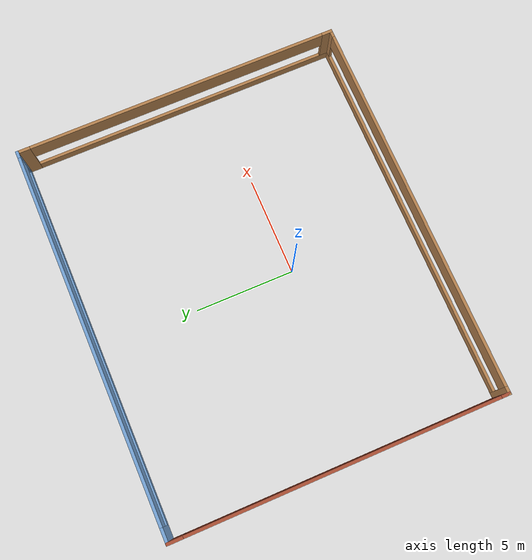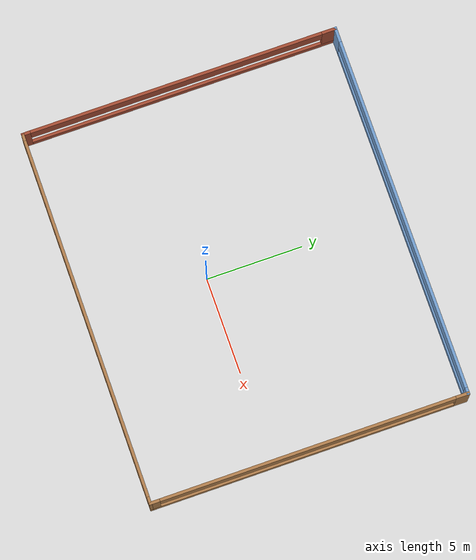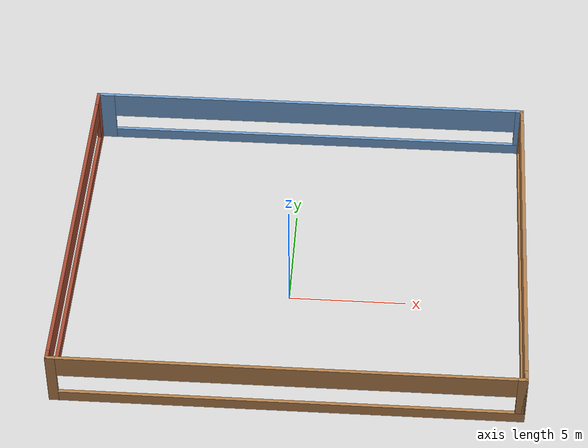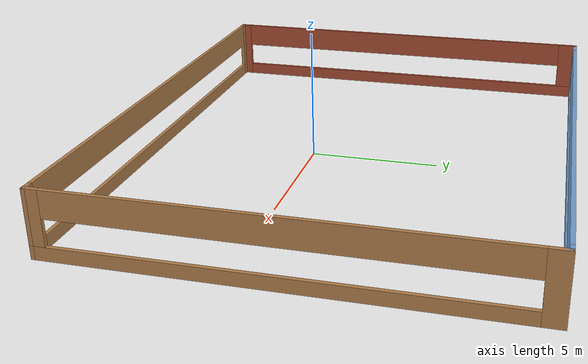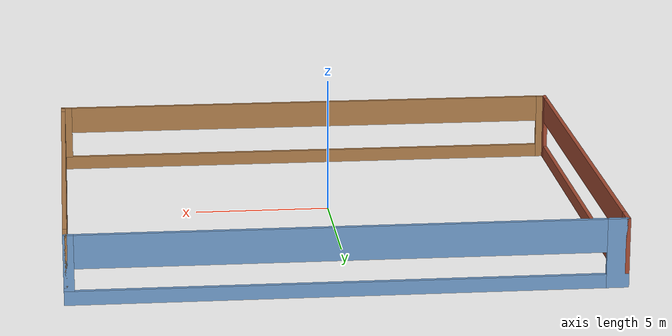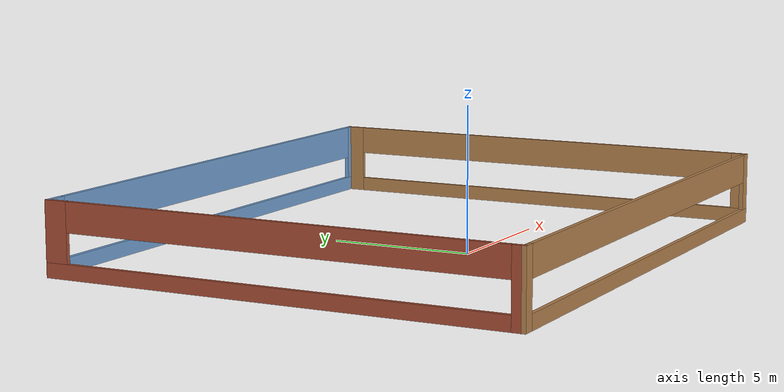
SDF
<?xml version='1.0'?>
<sdf version='1.6'>
  <model name='Building'>
    <pose frame=''>0.260608 1.85319 0 0 -0 0</pose>
    <link name='Wall_39'>
      <pose frame=''>-9.675 0 0 0 -0 1.5708</pose>
      <visual name='Wall_39_Visual_0'>
        <pose frame=''>-8.01982 0 1.25 0 -0 0</pose>
        <geometry>
          <box>
            <size>0.460353 0.15 2.5</size>
          </box>
        </geometry>
        <material>
          <script>
            <uri>file://media/materials/scripts/gazebo.material</uri>
            <name>Gazebo/Bricks</name>
          </script>
          <ambient>1 1 1 1</ambient>
        </material>
        <meta>
          <layer>0</layer>
        </meta>
      </visual>
      <collision name='Wall_39_Collision_0'>
        <geometry>
          <box>
            <size>0.460353 0.15 2.5</size>
          </box>
        </geometry>
        <pose frame=''>-8.01982 0 1.25 0 -0 0</pose>
      </collision>
      <visual name='Wall_39_Visual_1'>
        <pose frame=''>0.230176 0 0.25 0 -0 0</pose>
        <geometry>
          <box>
            <size>16.0396 0.15 0.5</size>
          </box>
        </geometry>
        <material>
          <script>
            <uri>file://media/materials/scripts/gazebo.material</uri>
            <name>Gazebo/Bricks</name>
          </script>
          <ambient>1 1 1 1</ambient>
        </material>
        <meta>
          <layer>0</layer>
        </meta>
      </visual>
      <collision name='Wall_39_Collision_1'>
        <geometry>
          <box>
            <size>16.0396 0.15 0.5</size>
          </box>
        </geometry>
        <pose frame=''>0.230176 0 0.25 0 -0 0</pose>
      </collision>
      <visual name='Wall_39_Visual_2'>
        <pose frame=''>7.85018 0 1.5 0 -0 0</pose>
        <geometry>
          <box>
            <size>0.799647 0.15 2</size>
          </box>
        </geometry>
        <material>
          <script>
            <uri>file://media/materials/scripts/gazebo.material</uri>
            <name>Gazebo/Bricks</name>
          </script>
          <ambient>1 1 1 1</ambient>
        </material>
        <meta>
          <layer>0</layer>
        </meta>
      </visual>
      <collision name='Wall_39_Collision_2'>
        <geometry>
          <box>
            <size>0.799647 0.15 2</size>
          </box>
        </geometry>
        <pose frame=''>7.85018 0 1.5 0 -0 0</pose>
      </collision>
      <visual name='Wall_39_Visual_3'>
        <pose frame=''>-0.169647 0 2 0 -0 0</pose>
        <geometry>
          <box>
            <size>15.24 0.15 1</size>
          </box>
        </geometry>
        <material>
          <script>
            <uri>file://media/materials/scripts/gazebo.material</uri>
            <name>Gazebo/Bricks</name>
          </script>
          <ambient>1 1 1 1</ambient>
        </material>
        <meta>
          <layer>0</layer>
        </meta>
      </visual>
      <collision name='Wall_39_Collision_3'>
        <geometry>
          <box>
            <size>15.24 0.15 1</size>
          </box>
        </geometry>
        <pose frame=''>-0.169647 0 2 0 -0 0</pose>
      </collision>
    </link>
    <link name='Wall_40'>
      <pose frame=''>-0 8.175 0 0 -0 0</pose>
      <visual name='Wall_40_Visual_0'>
        <pose frame=''>-9.34874 0 1.25 0 -0 0</pose>
        <geometry>
          <box>
            <size>0.802523 0.15 2.5</size>
          </box>
        </geometry>
        <material>
          <script>
            <uri>file://media/materials/scripts/gazebo.material</uri>
            <name>Gazebo/Grey</name>
          </script>
          <ambient>0.447059 0.623529 0.811765 1</ambient>
        </material>
        <meta>
          <layer>0</layer>
        </meta>
      </visual>
      <collision name='Wall_40_Collision_0'>
        <geometry>
          <box>
            <size>0.802523 0.15 2.5</size>
          </box>
        </geometry>
        <pose frame=''>-9.34874 0 1.25 0 -0 0</pose>
      </collision>
      <visual name='Wall_40_Visual_1'>
        <pose frame=''>0.401262 0 0.25 0 -0 0</pose>
        <geometry>
          <box>
            <size>18.6975 0.15 0.5</size>
          </box>
        </geometry>
        <material>
          <script>
            <uri>file://media/materials/scripts/gazebo.material</uri>
            <name>Gazebo/Grey</name>
          </script>
          <ambient>0.447059 0.623529 0.811765 1</ambient>
        </material>
        <meta>
          <layer>0</layer>
        </meta>
      </visual>
      <collision name='Wall_40_Collision_1'>
        <geometry>
          <box>
            <size>18.6975 0.15 0.5</size>
          </box>
        </geometry>
        <pose frame=''>0.401262 0 0.25 0 -0 0</pose>
      </collision>
      <visual name='Wall_40_Visual_2'>
        <pose frame=''>9.56603 0 1.5 0 -0 0</pose>
        <geometry>
          <box>
            <size>0.367946 0.15 2</size>
          </box>
        </geometry>
        <material>
          <script>
            <uri>file://media/materials/scripts/gazebo.material</uri>
            <name>Gazebo/Grey</name>
          </script>
          <ambient>0.447059 0.623529 0.811765 1</ambient>
        </material>
        <meta>
          <layer>0</layer>
        </meta>
      </visual>
      <collision name='Wall_40_Collision_2'>
        <geometry>
          <box>
            <size>0.367946 0.15 2</size>
          </box>
        </geometry>
        <pose frame=''>9.56603 0 1.5 0 -0 0</pose>
      </collision>
      <visual name='Wall_40_Visual_3'>
        <pose frame=''>0.217289 0 1.9 0 -0 0</pose>
        <geometry>
          <box>
            <size>18.3295 0.15 1.2</size>
          </box>
        </geometry>
        <material>
          <script>
            <uri>file://media/materials/scripts/gazebo.material</uri>
            <name>Gazebo/Grey</name>
          </script>
          <ambient>0.447059 0.623529 0.811765 1</ambient>
        </material>
        <meta>
          <layer>0</layer>
        </meta>
      </visual>
      <collision name='Wall_40_Collision_3'>
        <geometry>
          <box>
            <size>18.3295 0.15 1.2</size>
          </box>
        </geometry>
        <pose frame=''>0.217289 0 1.9 0 -0 0</pose>
      </collision>
    </link>
    <link name='Wall_42'>
      <pose frame=''>9.675 0 0 0 -0 -1.5708</pose>
      <visual name='Wall_42_Visual_0'>
        <pose frame=''>-7.89367 0 1.25 0 -0 0</pose>
        <geometry>
          <box>
            <size>0.712665 0.15 2.5</size>
          </box>
        </geometry>
        <material>
          <script>
            <uri>file://media/materials/scripts/gazebo.material</uri>
            <name>Gazebo/Wood</name>
          </script>
          <ambient>1 1 1 1</ambient>
        </material>
        <meta>
          <layer>0</layer>
        </meta>
      </visual>
      <collision name='Wall_42_Collision_0'>
        <geometry>
          <box>
            <size>0.712665 0.15 2.5</size>
          </box>
        </geometry>
        <pose frame=''>-7.89367 0 1.25 0 -0 0</pose>
      </collision>
      <visual name='Wall_42_Visual_1'>
        <pose frame=''>0.356333 0 0.25 0 -0 0</pose>
        <geometry>
          <box>
            <size>15.7873 0.15 0.5</size>
          </box>
        </geometry>
        <material>
          <script>
            <uri>file://media/materials/scripts/gazebo.material</uri>
            <name>Gazebo/Wood</name>
          </script>
          <ambient>1 1 1 1</ambient>
        </material>
        <meta>
          <layer>0</layer>
        </meta>
      </visual>
      <collision name='Wall_42_Collision_1'>
        <geometry>
          <box>
            <size>15.7873 0.15 0.5</size>
          </box>
        </geometry>
        <pose frame=''>0.356333 0 0.25 0 -0 0</pose>
      </collision>
      <visual name='Wall_42_Visual_2'>
        <pose frame=''>7.97133 0 1.5 0 -0 0</pose>
        <geometry>
          <box>
            <size>0.557335 0.15 2</size>
          </box>
        </geometry>
        <material>
          <script>
            <uri>file://media/materials/scripts/gazebo.material</uri>
            <name>Gazebo/Wood</name>
          </script>
          <ambient>1 1 1 1</ambient>
        </material>
        <meta>
          <layer>0</layer>
        </meta>
      </visual>
      <collision name='Wall_42_Collision_2'>
        <geometry>
          <box>
            <size>0.557335 0.15 2</size>
          </box>
        </geometry>
        <pose frame=''>7.97133 0 1.5 0 -0 0</pose>
      </collision>
      <visual name='Wall_42_Visual_3'>
        <pose frame=''>0.077665 0 2 0 -0 0</pose>
        <geometry>
          <box>
            <size>15.23 0.15 1</size>
          </box>
        </geometry>
        <material>
          <script>
            <uri>file://media/materials/scripts/gazebo.material</uri>
            <name>Gazebo/Wood</name>
          </script>
          <ambient>1 1 1 1</ambient>
        </material>
        <meta>
          <layer>0</layer>
        </meta>
      </visual>
      <collision name='Wall_42_Collision_3'>
        <geometry>
          <box>
            <size>15.23 0.15 1</size>
          </box>
        </geometry>
        <pose frame=''>0.077665 0 2 0 -0 0</pose>
      </collision>
    </link>
    <link name='Wall_46'>
      <pose frame=''>-0 -8.175 0 0 -0 0</pose>
      <visual name='Wall_46_Visual_0'>
        <pose frame=''>-9.54295 0 1.25 0 -0 0</pose>
        <geometry>
          <box>
            <size>0.414098 0.15 2.5</size>
          </box>
        </geometry>
        <material>
          <script>
            <uri>file://media/materials/scripts/gazebo.material</uri>
            <name>Gazebo/Wood</name>
          </script>
          <ambient>1 1 1 1</ambient>
        </material>
        <meta>
          <layer>0</layer>
        </meta>
      </visual>
      <collision name='Wall_46_Collision_0'>
        <geometry>
          <box>
            <size>0.414098 0.15 2.5</size>
          </box>
        </geometry>
        <pose frame=''>-9.54295 0 1.25 0 -0 0</pose>
      </collision>
      <visual name='Wall_46_Visual_1'>
        <pose frame=''>0.207049 0 0.25 0 -0 0</pose>
        <geometry>
          <box>
            <size>19.0859 0.15 0.5</size>
          </box>
        </geometry>
        <material>
          <script>
            <uri>file://media/materials/scripts/gazebo.material</uri>
            <name>Gazebo/Wood</name>
          </script>
          <ambient>1 1 1 1</ambient>
        </material>
        <meta>
          <layer>0</layer>
        </meta>
      </visual>
      <collision name='Wall_46_Collision_1'>
        <geometry>
          <box>
            <size>19.0859 0.15 0.5</size>
          </box>
        </geometry>
        <pose frame=''>0.207049 0 0.25 0 -0 0</pose>
      </collision>
      <visual name='Wall_46_Visual_2'>
        <pose frame=''>9.54246 0 1.5 0 -0 0</pose>
        <geometry>
          <box>
            <size>0.41509 0.15 2</size>
          </box>
        </geometry>
        <material>
          <script>
            <uri>file://media/materials/scripts/gazebo.material</uri>
            <name>Gazebo/Wood</name>
          </script>
          <ambient>1 1 1 1</ambient>
        </material>
        <meta>
          <layer>0</layer>
        </meta>
      </visual>
      <collision name='Wall_46_Collision_2'>
        <geometry>
          <box>
            <size>0.41509 0.15 2</size>
          </box>
        </geometry>
        <pose frame=''>9.54246 0 1.5 0 -0 0</pose>
      </collision>
      <visual name='Wall_46_Visual_3'>
        <pose frame=''>-0.000496 0 2 0 -0 0</pose>
        <geometry>
          <box>
            <size>18.6708 0.15 1</size>
          </box>
        </geometry>
        <material>
          <script>
            <uri>file://media/materials/scripts/gazebo.material</uri>
            <name>Gazebo/Wood</name>
          </script>
          <ambient>1 1 1 1</ambient>
        </material>
        <meta>
          <layer>0</layer>
        </meta>
      </visual>
      <collision name='Wall_46_Collision_3'>
        <geometry>
          <box>
            <size>18.6708 0.15 1</size>
          </box>
        </geometry>
        <pose frame=''>-0.000496 0 2 0 -0 0</pose>
      </collision>
    </link>
    <static>1</static>
  </model>
</sdf>
